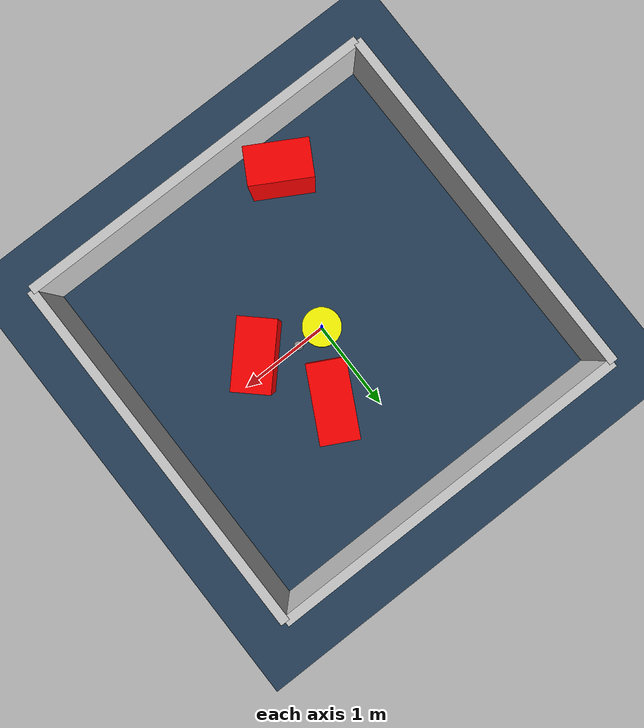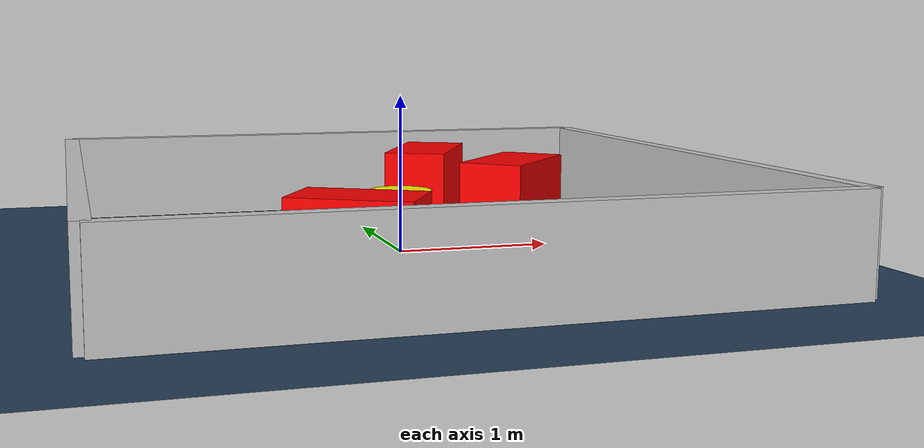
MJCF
<?xml version="1.0" ?>
<mujoco model="generated_environment">
  <option timestep="0.01" integrator="RK4" cone="elliptic"/>
  <default>
    <geom density="1"/>
  </default>
  <asset>
    <texture builtin="gradient" height="3072" rgb1="0.3 0.5 0.7" rgb2="0 0 0" type="skybox" width="512"/>
    <texture builtin="checker" height="300" mark="edge" markrgb="0.8 0.8 0.8" name="groundplane" rgb1="0.2 0.3 0.4" rgb2="0.1 0.2 0.3" type="2d" width="300"/>
    <material name="groundplane" reflectance="0.2" texrepeat="5 5" texture="groundplane" texuniform="true"/>
    <material name="robot" rgba="0.0 1.0 0.0 1"/>
  </asset>
  <worldbody>
    <light dir="0 0 -1" directional="true" pos="0 0 1.5"/>
    <geom condim="4" friction="1.0 0.005 0.001" material="groundplane" name="floor" size="0 0 0.05" type="plane"/>
    <body name="walls">
      <geom name="wall_1" condim="4" pos="-2.0 0.0 0.3" rgba="0.800000011920929 0.800000011920929 0.800000011920929 1.0" size="0.05 2.0 0.3" type="box"/>
      <geom name="wall_2" condim="4" pos="2.0 0.0 0.3" rgba="0.800000011920929 0.800000011920929 0.800000011920929 1.0" size="0.05 2.0 0.3" type="box"/>
      <geom name="wall_3" condim="4" pos="0.0 -2.0 0.3" rgba="0.800000011920929 0.800000011920929 0.800000011920929 1.0" size="2.0 0.05 0.3" type="box"/>
      <geom name="wall_4" condim="4" pos="0.0 2.0 0.3" rgba="0.800000011920929 0.800000011920929 0.800000011920929 1.0" size="2.0 0.05 0.3" type="box"/>
    </body>
    <body name="robot">
      <joint name="joint_x" type="slide" pos="0 0 0" axis="1 0 0"/>
      <joint name="joint_y" type="slide" pos="0 0 0" axis="0 1 0"/>
      <geom name="robot" type="sphere" pos="0.3 0.0 0.2" size="0.05" mass="5." friction="1.0 0.005 0.0001" condim="4" rgba="0.5 0.5 0.5 1.0"/>
      <site name="sensor_ball"/>
    </body>
    <body name="obstacle_movable_1">
      <geom name="obstacle_movable_1" condim="4" pos="0.0 0.0 0.2" euler="0 0 0.0" friction="1.0 0.005 0.001" rgba="1.0 1.0 0.0 1.0" size="0.2 0.2 0.0" type="cylinder" mass="0.1"/>
      <joint type="free"/>
    </body>
    <body name="obstacle_2_static">
      <geom name="obstacle_2_static" condim="4" pos="-0.6541257025028011 -1.5247548177807828 0.3" euler="0 0 330.24569166710074" friction="1.0 0.005 0.001" rgba="1 0 0 1" size="0.3319406745967127 0.2 0.3" type="box"/>
    </body>
    <body name="obstacle_3_static">
      <geom name="obstacle_3_static" condim="4" pos="0.3621986112349185 0.6375426909183661 0.3" euler="0 0 242.28172613415003" friction="1.0 0.005 0.001" rgba="1 0 0 1" size="0.40171388371957706 0.2 0.3" type="box"/>
    </body>
    <body name="obstacle_4_static">
      <geom name="obstacle_4_static" condim="4" pos="0.689156299169948 -0.18126192218487835 0.3" euler="0 0 227.11469312969845" friction="1.0 0.005 0.001" rgba="1 0 0 1" size="0.3691372690668212 0.2 0.3" type="box"/>
    </body>
  </worldbody>
  <actuator>
    <motor name="actuator_x" joint="joint_x" gear="1" ctrlrange="-1 1"/>
    <motor name="actuator_y" joint="joint_y" gear="1" ctrlrange="-1 1"/>
  </actuator>
</mujoco>
